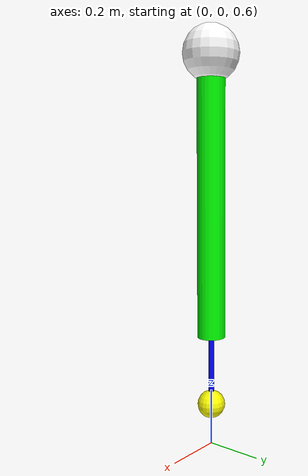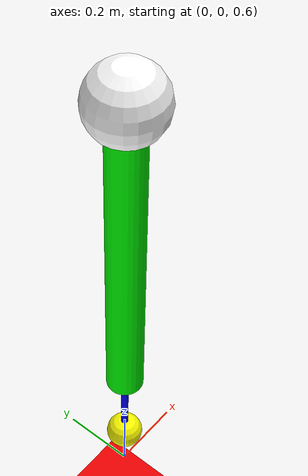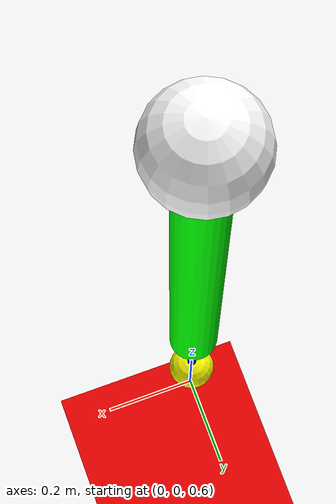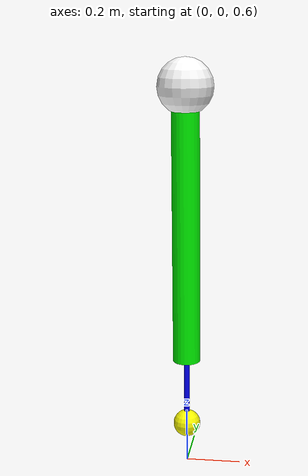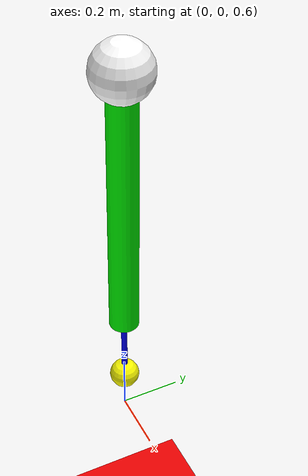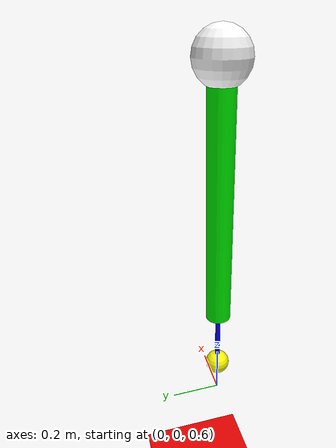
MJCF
<mujoco>
  <option timestep="0.00005" integrator="RK4" gravity="0 0 -9.81">
	<flag energy="enable" contact="enable"/>
  </option>
  <visual>
		<headlight ambient=".3 .3 .3"/>
  </visual>
  <worldbody>

    <geom type="plane" size="30 3 0.1" rgba=".9 0 0 1"/>

	<body name="torso" pos="0 0 2" euler="0 0 0" >
		<joint name="x" type="slide" pos="0 0 0" axis="1 0 0"/>
		<joint name="z" type="slide" pos="0 0 0" axis="0 0 1"/>
		<geom type="sphere" size="0.1" rgba="1 1 1 1" mass="1"/>
		<body name="leg" pos="0 0 -.5" euler="0 0 0">
			<joint name="hip" type="hinge" pos="0 0 0.5" axis="0 -1 0"/>
			<geom type="cylinder" size=".05 .5" rgba="0 1 0 1" mass="1"/>
			<body name="foot" pos="0 0 -0.75">
				<joint name="knee" type="slide" pos="0 0 .25" axis="0 0 -1"/>
				<!-- cylinder is decoration for visibility of foot sphere -->
				<geom type="cylinder" pos="0 0 0.125" size=".01 .125" rgba="0 0 1 1" mass="0"/>
				<geom type="sphere" size=".05" rgba="1 1 0 1" mass="0.1"/>
			</body>
		</body>
	</body>
  </worldbody>

  <actuator>
	<position name="pservo-hip" joint="hip" kp="0"/>
	<velocity name="vservo-hip" joint="hip" kv="0"/>
	<position name="pservo-knee" joint="knee" kp="0"/>
	<velocity name="vservo-knee" joint="knee" kv="0"/>
  </actuator>
</mujoco>
